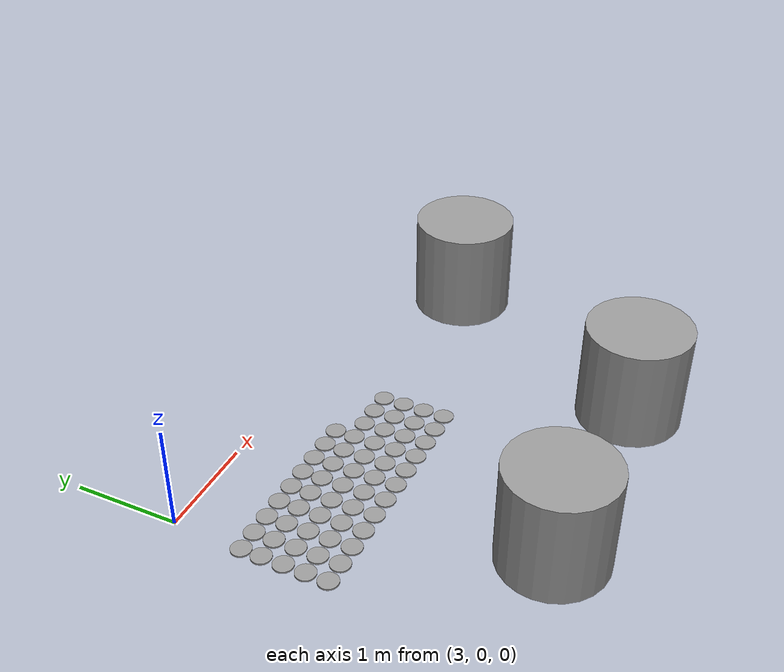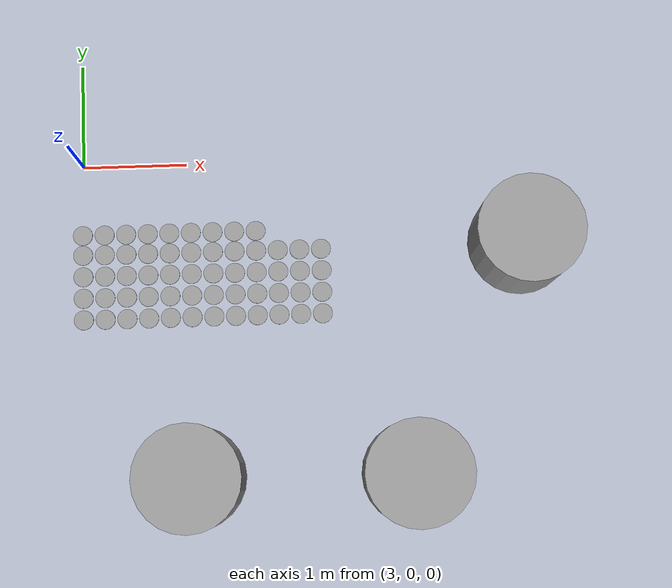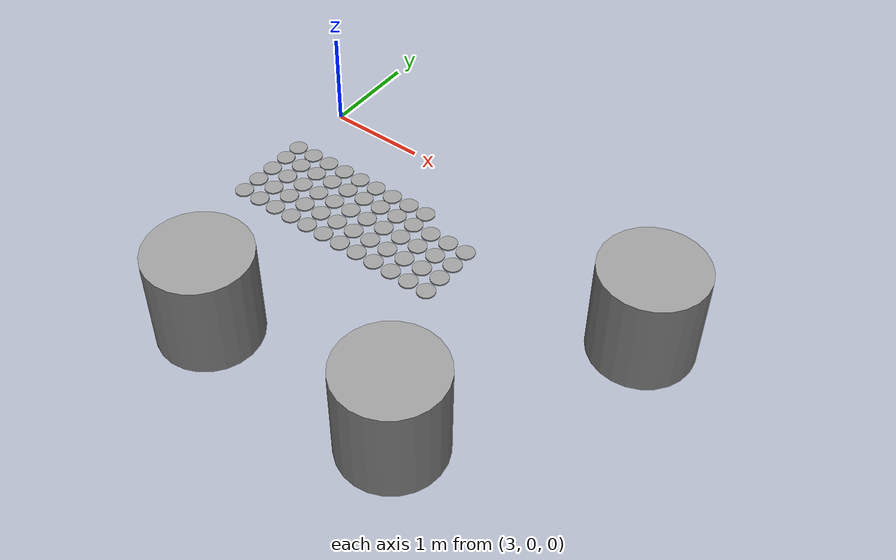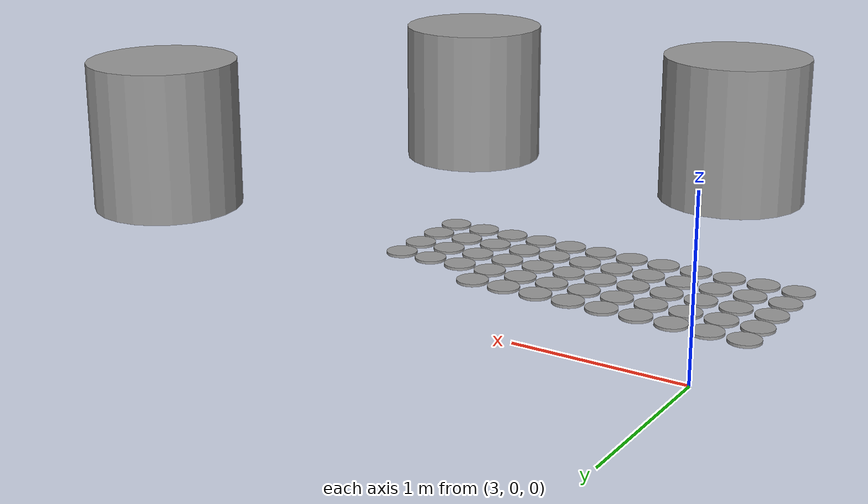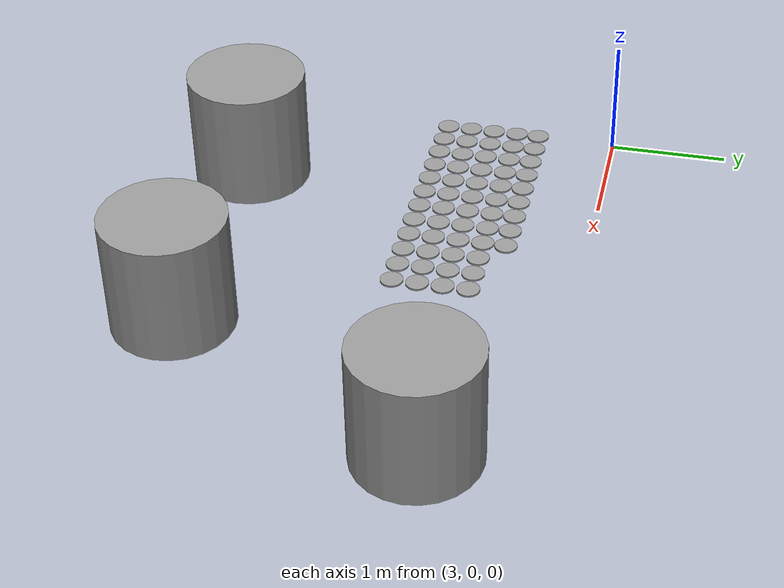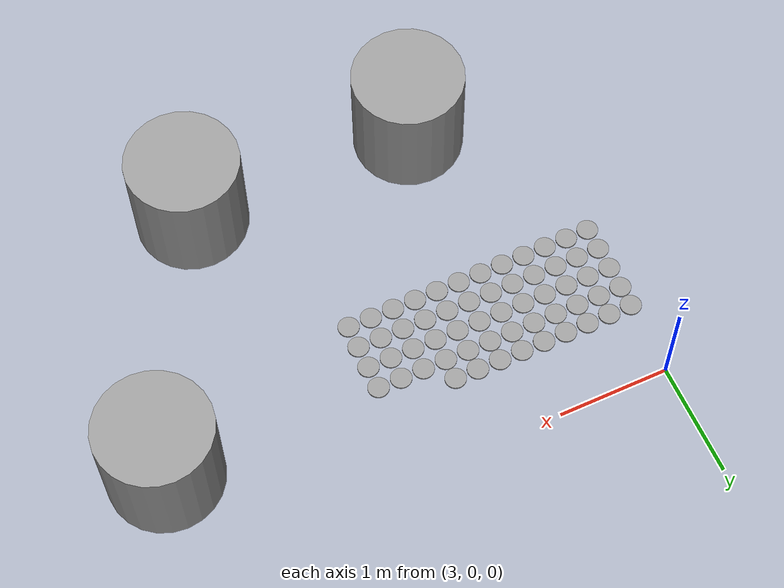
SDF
<sdf version="1.6">
 <world name="default">
  <model name="unit_cylinder_clone_690">
   <pose>2.98 -1.5 0.008117 0 -0 0</pose>
   <link name="link">
    <inertial>
     <mass>1</mass>
     <inertia><ixx>0.145833</ixx><ixy>0</ixy><ixz>0</ixz><iyy>0.145833</iyy><iyz>0</iyz><izz>0.125</izz></inertia>
    </inertial>
    <collision name="collision">
     <geometry><cylinder><radius>0.0950718</radius><length>0.0162339</length></cylinder></geometry>
     <max_contacts>5</max_contacts>
    </collision>
    <visual name="visual">
     <geometry><cylinder><radius>0.0950718</radius><length>0.0162339</length></cylinder></geometry>
     <material>
      <script><name>Gazebo/Grey</name><uri>file://media/materials/scripts/gazebo.material</uri></script>
     </material>
    </visual>
   </link>
  </model>
  <model name="unit_cylinder_clone_691">
   <pose>2.98 -1.29 0.008117 0 -0 0</pose>
   <link name="link">
    <inertial>
     <mass>1</mass>
     <inertia><ixx>0.145833</ixx><ixy>0</ixy><ixz>0</ixz><iyy>0.145833</iyy><iyz>0</iyz><izz>0.125</izz></inertia>
    </inertial>
    <collision name="collision">
     <geometry><cylinder><radius>0.0950718</radius><length>0.0162339</length></cylinder></geometry>
     <max_contacts>5</max_contacts>
    </collision>
    <visual name="visual">
     <geometry><cylinder><radius>0.0950718</radius><length>0.0162339</length></cylinder></geometry>
     <material>
      <script><name>Gazebo/Grey</name><uri>file://media/materials/scripts/gazebo.material</uri></script>
     </material>
    </visual>
   </link>
  </model>
  <model name="unit_cylinder_clone_692">
   <pose>2.98 -1.08 0.008117 0 -0 0</pose>
   <link name="link">
    <inertial>
     <mass>1</mass>
     <inertia><ixx>0.145833</ixx><ixy>0</ixy><ixz>0</ixz><iyy>0.145833</iyy><iyz>0</iyz><izz>0.125</izz></inertia>
    </inertial>
    <collision name="collision">
     <geometry><cylinder><radius>0.0950718</radius><length>0.0162339</length></cylinder></geometry>
     <max_contacts>5</max_contacts>
    </collision>
    <visual name="visual">
     <geometry><cylinder><radius>0.0950718</radius><length>0.0162339</length></cylinder></geometry>
     <material>
      <script><name>Gazebo/Grey</name><uri>file://media/materials/scripts/gazebo.material</uri></script>
     </material>
    </visual>
   </link>
  </model>
  <model name="unit_cylinder_clone_693">
   <pose>2.98 -0.87 0.008117 0 -0 0</pose>
   <link name="link">
    <inertial>
     <mass>1</mass>
     <inertia><ixx>0.145833</ixx><ixy>0</ixy><ixz>0</ixz><iyy>0.145833</iyy><iyz>0</iyz><izz>0.125</izz></inertia>
    </inertial>
    <collision name="collision">
     <geometry><cylinder><radius>0.0950718</radius><length>0.0162339</length></cylinder></geometry>
     <max_contacts>5</max_contacts>
    </collision>
    <visual name="visual">
     <geometry><cylinder><radius>0.0950718</radius><length>0.0162339</length></cylinder></geometry>
     <material>
      <script><name>Gazebo/Grey</name><uri>file://media/materials/scripts/gazebo.material</uri></script>
     </material>
    </visual>
   </link>
  </model>
  <model name="unit_cylinder_clone_694">
   <pose>2.98 -0.675077 0.008117 -0 -0 -0</pose>
   <link name="link">
    <inertial>
     <mass>1</mass>
     <inertia><ixx>0.145833</ixx><ixy>0</ixy><ixz>0</ixz><iyy>0.145833</iyy><iyz>0</iyz><izz>0.125</izz></inertia>
    </inertial>
    <collision name="collision">
     <geometry><cylinder><radius>0.0950718</radius><length>0.0162339</length></cylinder></geometry>
     <max_contacts>5</max_contacts>
    </collision>
    <visual name="visual">
     <geometry><cylinder><radius>0.0950718</radius><length>0.0162339</length></cylinder></geometry>
     <material>
      <script><name>Gazebo/Grey</name><uri>file://media/materials/scripts/gazebo.material</uri></script>
     </material>
    </visual>
   </link>
  </model>
  <model name="unit_cylinder_clone_695">
   <pose>3.19 -1.5 0.008117 0 -0 0</pose>
   <link name="link">
    <inertial>
     <mass>1</mass>
     <inertia><ixx>0.145833</ixx><ixy>0</ixy><ixz>0</ixz><iyy>0.145833</iyy><iyz>0</iyz><izz>0.125</izz></inertia>
    </inertial>
    <collision name="collision">
     <geometry><cylinder><radius>0.0950718</radius><length>0.0162339</length></cylinder></geometry>
     <max_contacts>5</max_contacts>
    </collision>
    <visual name="visual">
     <geometry><cylinder><radius>0.0950718</radius><length>0.0162339</length></cylinder></geometry>
     <material>
      <script><name>Gazebo/Grey</name><uri>file://media/materials/scripts/gazebo.material</uri></script>
     </material>
    </visual>
   </link>
  </model>
  <model name="unit_cylinder_clone_696">
   <pose>3.19 -1.29 0.008117 0 -0 0</pose>
   <link name="link">
    <inertial>
     <mass>1</mass>
     <inertia><ixx>0.145833</ixx><ixy>0</ixy><ixz>0</ixz><iyy>0.145833</iyy><iyz>0</iyz><izz>0.125</izz></inertia>
    </inertial>
    <collision name="collision">
     <geometry><cylinder><radius>0.0950718</radius><length>0.0162339</length></cylinder></geometry>
     <max_contacts>5</max_contacts>
    </collision>
    <visual name="visual">
     <geometry><cylinder><radius>0.0950718</radius><length>0.0162339</length></cylinder></geometry>
     <material>
      <script><name>Gazebo/Grey</name><uri>file://media/materials/scripts/gazebo.material</uri></script>
     </material>
    </visual>
   </link>
  </model>
  <model name="unit_cylinder_clone_697">
   <pose>3.19 -1.08 0.008117 0 -0 0</pose>
   <link name="link">
    <inertial>
     <mass>1</mass>
     <inertia><ixx>0.145833</ixx><ixy>0</ixy><ixz>0</ixz><iyy>0.145833</iyy><iyz>0</iyz><izz>0.125</izz></inertia>
    </inertial>
    <collision name="collision">
     <geometry><cylinder><radius>0.0950718</radius><length>0.0162339</length></cylinder></geometry>
     <max_contacts>5</max_contacts>
    </collision>
    <visual name="visual">
     <geometry><cylinder><radius>0.0950718</radius><length>0.0162339</length></cylinder></geometry>
     <material>
      <script><name>Gazebo/Grey</name><uri>file://media/materials/scripts/gazebo.material</uri></script>
     </material>
    </visual>
   </link>
  </model>
  <model name="unit_cylinder_clone_698">
   <pose>3.19 -0.87 0.008117 0 -0 0</pose>
   <link name="link">
    <inertial>
     <mass>1</mass>
     <inertia><ixx>0.145833</ixx><ixy>0</ixy><ixz>0</ixz><iyy>0.145833</iyy><iyz>0</iyz><izz>0.125</izz></inertia>
    </inertial>
    <collision name="collision">
     <geometry><cylinder><radius>0.0950718</radius><length>0.0162339</length></cylinder></geometry>
     <max_contacts>5</max_contacts>
    </collision>
    <visual name="visual">
     <geometry><cylinder><radius>0.0950718</radius><length>0.0162339</length></cylinder></geometry>
     <material>
      <script><name>Gazebo/Grey</name><uri>file://media/materials/scripts/gazebo.material</uri></script>
     </material>
    </visual>
   </link>
  </model>
  <model name="unit_cylinder_clone_699">
   <pose>3.19 -0.675077 0.008117 -0 -0 -0</pose>
   <link name="link">
    <inertial>
     <mass>1</mass>
     <inertia><ixx>0.145833</ixx><ixy>0</ixy><ixz>0</ixz><iyy>0.145833</iyy><iyz>0</iyz><izz>0.125</izz></inertia>
    </inertial>
    <collision name="collision">
     <geometry><cylinder><radius>0.0950718</radius><length>0.0162339</length></cylinder></geometry>
     <max_contacts>5</max_contacts>
    </collision>
    <visual name="visual">
     <geometry><cylinder><radius>0.0950718</radius><length>0.0162339</length></cylinder></geometry>
     <material>
      <script><name>Gazebo/Grey</name><uri>file://media/materials/scripts/gazebo.material</uri></script>
     </material>
    </visual>
   </link>
  </model>
  <model name="unit_cylinder_clone_700">
   <pose>3.4 -1.5 0.008117 0 -0 0</pose>
   <link name="link">
    <inertial>
     <mass>1</mass>
     <inertia><ixx>0.145833</ixx><ixy>0</ixy><ixz>0</ixz><iyy>0.145833</iyy><iyz>0</iyz><izz>0.125</izz></inertia>
    </inertial>
    <collision name="collision">
     <geometry><cylinder><radius>0.0950718</radius><length>0.0162339</length></cylinder></geometry>
     <max_contacts>5</max_contacts>
    </collision>
    <visual name="visual">
     <geometry><cylinder><radius>0.0950718</radius><length>0.0162339</length></cylinder></geometry>
     <material>
      <script><name>Gazebo/Grey</name><uri>file://media/materials/scripts/gazebo.material</uri></script>
     </material>
    </visual>
   </link>
  </model>
  <model name="unit_cylinder_clone_701">
   <pose>3.4 -1.29 0.008117 0 -0 0</pose>
   <link name="link">
    <inertial>
     <mass>1</mass>
     <inertia><ixx>0.145833</ixx><ixy>0</ixy><ixz>0</ixz><iyy>0.145833</iyy><iyz>0</iyz><izz>0.125</izz></inertia>
    </inertial>
    <collision name="collision">
     <geometry><cylinder><radius>0.0950718</radius><length>0.0162339</length></cylinder></geometry>
     <max_contacts>5</max_contacts>
    </collision>
    <visual name="visual">
     <geometry><cylinder><radius>0.0950718</radius><length>0.0162339</length></cylinder></geometry>
     <material>
      <script><name>Gazebo/Grey</name><uri>file://media/materials/scripts/gazebo.material</uri></script>
     </material>
    </visual>
   </link>
  </model>
  <model name="unit_cylinder_clone_702">
   <pose>3.4 -1.08 0.008117 0 -0 0</pose>
   <link name="link">
    <inertial>
     <mass>1</mass>
     <inertia><ixx>0.145833</ixx><ixy>0</ixy><ixz>0</ixz><iyy>0.145833</iyy><iyz>0</iyz><izz>0.125</izz></inertia>
    </inertial>
    <collision name="collision">
     <geometry><cylinder><radius>0.0950718</radius><length>0.0162339</length></cylinder></geometry>
     <max_contacts>5</max_contacts>
    </collision>
    <visual name="visual">
     <geometry><cylinder><radius>0.0950718</radius><length>0.0162339</length></cylinder></geometry>
     <material>
      <script><name>Gazebo/Grey</name><uri>file://media/materials/scripts/gazebo.material</uri></script>
     </material>
    </visual>
   </link>
  </model>
  <model name="unit_cylinder_clone_703">
   <pose>3.4 -0.87 0.008117 0 -0 0</pose>
   <link name="link">
    <inertial>
     <mass>1</mass>
     <inertia><ixx>0.145833</ixx><ixy>0</ixy><ixz>0</ixz><iyy>0.145833</iyy><iyz>0</iyz><izz>0.125</izz></inertia>
    </inertial>
    <collision name="collision">
     <geometry><cylinder><radius>0.0950718</radius><length>0.0162339</length></cylinder></geometry>
     <max_contacts>5</max_contacts>
    </collision>
    <visual name="visual">
     <geometry><cylinder><radius>0.0950718</radius><length>0.0162339</length></cylinder></geometry>
     <material>
      <script><name>Gazebo/Grey</name><uri>file://media/materials/scripts/gazebo.material</uri></script>
     </material>
    </visual>
   </link>
  </model>
  <model name="unit_cylinder_clone_704">
   <pose>3.4 -0.675077 0.008117 -0 -0 -0</pose>
   <link name="link">
    <inertial>
     <mass>1</mass>
     <inertia><ixx>0.145833</ixx><ixy>0</ixy><ixz>0</ixz><iyy>0.145833</iyy><iyz>0</iyz><izz>0.125</izz></inertia>
    </inertial>
    <collision name="collision">
     <geometry><cylinder><radius>0.0950718</radius><length>0.0162339</length></cylinder></geometry>
     <max_contacts>5</max_contacts>
    </collision>
    <visual name="visual">
     <geometry><cylinder><radius>0.0950718</radius><length>0.0162339</length></cylinder></geometry>
     <material>
      <script><name>Gazebo/Grey</name><uri>file://media/materials/scripts/gazebo.material</uri></script>
     </material>
    </visual>
   </link>
  </model>
  <model name="unit_cylinder_clone_705">
   <pose>3.61 -1.5 0.008117 0 -0 0</pose>
   <link name="link">
    <inertial>
     <mass>1</mass>
     <inertia><ixx>0.145833</ixx><ixy>0</ixy><ixz>0</ixz><iyy>0.145833</iyy><iyz>0</iyz><izz>0.125</izz></inertia>
    </inertial>
    <collision name="collision">
     <geometry><cylinder><radius>0.0950718</radius><length>0.0162339</length></cylinder></geometry>
     <max_contacts>5</max_contacts>
    </collision>
    <visual name="visual">
     <geometry><cylinder><radius>0.0950718</radius><length>0.0162339</length></cylinder></geometry>
     <material>
      <script><name>Gazebo/Grey</name><uri>file://media/materials/scripts/gazebo.material</uri></script>
     </material>
    </visual>
   </link>
  </model>
  <model name="unit_cylinder_clone_706">
   <pose>3.61 -1.29 0.008117 0 -0 0</pose>
   <link name="link">
    <inertial>
     <mass>1</mass>
     <inertia><ixx>0.145833</ixx><ixy>0</ixy><ixz>0</ixz><iyy>0.145833</iyy><iyz>0</iyz><izz>0.125</izz></inertia>
    </inertial>
    <collision name="collision">
     <geometry><cylinder><radius>0.0950718</radius><length>0.0162339</length></cylinder></geometry>
     <max_contacts>5</max_contacts>
    </collision>
    <visual name="visual">
     <geometry><cylinder><radius>0.0950718</radius><length>0.0162339</length></cylinder></geometry>
     <material>
      <script><name>Gazebo/Grey</name><uri>file://media/materials/scripts/gazebo.material</uri></script>
     </material>
    </visual>
   </link>
  </model>
  <model name="unit_cylinder_clone_707">
   <pose>3.61 -1.08 0.008117 0 -0 0</pose>
   <link name="link">
    <inertial>
     <mass>1</mass>
     <inertia><ixx>0.145833</ixx><ixy>0</ixy><ixz>0</ixz><iyy>0.145833</iyy><iyz>0</iyz><izz>0.125</izz></inertia>
    </inertial>
    <collision name="collision">
     <geometry><cylinder><radius>0.0950718</radius><length>0.0162339</length></cylinder></geometry>
     <max_contacts>5</max_contacts>
    </collision>
    <visual name="visual">
     <geometry><cylinder><radius>0.0950718</radius><length>0.0162339</length></cylinder></geometry>
     <material>
      <script><name>Gazebo/Grey</name><uri>file://media/materials/scripts/gazebo.material</uri></script>
     </material>
    </visual>
   </link>
  </model>
  <model name="unit_cylinder_clone_708">
   <pose>3.61 -0.87 0.008117 0 -0 0</pose>
   <link name="link">
    <inertial>
     <mass>1</mass>
     <inertia><ixx>0.145833</ixx><ixy>0</ixy><ixz>0</ixz><iyy>0.145833</iyy><iyz>0</iyz><izz>0.125</izz></inertia>
    </inertial>
    <collision name="collision">
     <geometry><cylinder><radius>0.0950718</radius><length>0.0162339</length></cylinder></geometry>
     <max_contacts>5</max_contacts>
    </collision>
    <visual name="visual">
     <geometry><cylinder><radius>0.0950718</radius><length>0.0162339</length></cylinder></geometry>
     <material>
      <script><name>Gazebo/Grey</name><uri>file://media/materials/scripts/gazebo.material</uri></script>
     </material>
    </visual>
   </link>
  </model>
  <model name="unit_cylinder_clone_709">
   <pose>3.61 -0.675077 0.008117 -0 -0 -0</pose>
   <link name="link">
    <inertial>
     <mass>1</mass>
     <inertia><ixx>0.145833</ixx><ixy>0</ixy><ixz>0</ixz><iyy>0.145833</iyy><iyz>0</iyz><izz>0.125</izz></inertia>
    </inertial>
    <collision name="collision">
     <geometry><cylinder><radius>0.0950718</radius><length>0.0162339</length></cylinder></geometry>
     <max_contacts>5</max_contacts>
    </collision>
    <visual name="visual">
     <geometry><cylinder><radius>0.0950718</radius><length>0.0162339</length></cylinder></geometry>
     <material>
      <script><name>Gazebo/Grey</name><uri>file://media/materials/scripts/gazebo.material</uri></script>
     </material>
    </visual>
   </link>
  </model>
  <model name="unit_cylinder_clone_710">
   <pose>3.82 -1.5 0.008117 0 -0 0</pose>
   <link name="link">
    <inertial>
     <mass>1</mass>
     <inertia><ixx>0.145833</ixx><ixy>0</ixy><ixz>0</ixz><iyy>0.145833</iyy><iyz>0</iyz><izz>0.125</izz></inertia>
    </inertial>
    <collision name="collision">
     <geometry><cylinder><radius>0.0950718</radius><length>0.0162339</length></cylinder></geometry>
     <max_contacts>5</max_contacts>
    </collision>
    <visual name="visual">
     <geometry><cylinder><radius>0.0950718</radius><length>0.0162339</length></cylinder></geometry>
     <material>
      <script><name>Gazebo/Grey</name><uri>file://media/materials/scripts/gazebo.material</uri></script>
     </material>
    </visual>
   </link>
  </model>
  <model name="unit_cylinder_clone_711">
   <pose>3.82 -1.29 0.008117 0 -0 0</pose>
   <link name="link">
    <inertial>
     <mass>1</mass>
     <inertia><ixx>0.145833</ixx><ixy>0</ixy><ixz>0</ixz><iyy>0.145833</iyy><iyz>0</iyz><izz>0.125</izz></inertia>
    </inertial>
    <collision name="collision">
     <geometry><cylinder><radius>0.0950718</radius><length>0.0162339</length></cylinder></geometry>
     <max_contacts>5</max_contacts>
    </collision>
    <visual name="visual">
     <geometry><cylinder><radius>0.0950718</radius><length>0.0162339</length></cylinder></geometry>
     <material>
      <script><name>Gazebo/Grey</name><uri>file://media/materials/scripts/gazebo.material</uri></script>
     </material>
    </visual>
   </link>
  </model>
  <model name="unit_cylinder_clone_712">
   <pose>3.82 -1.08 0.008117 0 -0 0</pose>
   <link name="link">
    <inertial>
     <mass>1</mass>
     <inertia><ixx>0.145833</ixx><ixy>0</ixy><ixz>0</ixz><iyy>0.145833</iyy><iyz>0</iyz><izz>0.125</izz></inertia>
    </inertial>
    <collision name="collision">
     <geometry><cylinder><radius>0.0950718</radius><length>0.0162339</length></cylinder></geometry>
     <max_contacts>5</max_contacts>
    </collision>
    <visual name="visual">
     <geometry><cylinder><radius>0.0950718</radius><length>0.0162339</length></cylinder></geometry>
     <material>
      <script><name>Gazebo/Grey</name><uri>file://media/materials/scripts/gazebo.material</uri></script>
     </material>
    </visual>
   </link>
  </model>
  <model name="unit_cylinder_clone_713">
   <pose>3.82 -0.87 0.008117 0 -0 0</pose>
   <link name="link">
    <inertial>
     <mass>1</mass>
     <inertia><ixx>0.145833</ixx><ixy>0</ixy><ixz>0</ixz><iyy>0.145833</iyy><iyz>0</iyz><izz>0.125</izz></inertia>
    </inertial>
    <collision name="collision">
     <geometry><cylinder><radius>0.0950718</radius><length>0.0162339</length></cylinder></geometry>
     <max_contacts>5</max_contacts>
    </collision>
    <visual name="visual">
     <geometry><cylinder><radius>0.0950718</radius><length>0.0162339</length></cylinder></geometry>
     <material>
      <script><name>Gazebo/Grey</name><uri>file://media/materials/scripts/gazebo.material</uri></script>
     </material>
    </visual>
   </link>
  </model>
  <model name="unit_cylinder_clone_714">
   <pose>3.82 -0.675077 0.008117 -0 -0 -0</pose>
   <link name="link">
    <inertial>
     <mass>1</mass>
     <inertia><ixx>0.145833</ixx><ixy>0</ixy><ixz>0</ixz><iyy>0.145833</iyy><iyz>0</iyz><izz>0.125</izz></inertia>
    </inertial>
    <collision name="collision">
     <geometry><cylinder><radius>0.0950718</radius><length>0.0162339</length></cylinder></geometry>
     <max_contacts>5</max_contacts>
    </collision>
    <visual name="visual">
     <geometry><cylinder><radius>0.0950718</radius><length>0.0162339</length></cylinder></geometry>
     <material>
      <script><name>Gazebo/Grey</name><uri>file://media/materials/scripts/gazebo.material</uri></script>
     </material>
    </visual>
   </link>
  </model>
  <model name="unit_cylinder_clone_715">
   <pose>4.03 -1.5 0.008117 0 -0 0</pose>
   <link name="link">
    <inertial>
     <mass>1</mass>
     <inertia><ixx>0.145833</ixx><ixy>0</ixy><ixz>0</ixz><iyy>0.145833</iyy><iyz>0</iyz><izz>0.125</izz></inertia>
    </inertial>
    <collision name="collision">
     <geometry><cylinder><radius>0.0950718</radius><length>0.0162339</length></cylinder></geometry>
     <max_contacts>5</max_contacts>
    </collision>
    <visual name="visual">
     <geometry><cylinder><radius>0.0950718</radius><length>0.0162339</length></cylinder></geometry>
     <material>
      <script><name>Gazebo/Grey</name><uri>file://media/materials/scripts/gazebo.material</uri></script>
     </material>
    </visual>
   </link>
  </model>
  <model name="unit_cylinder_clone_716">
   <pose>4.03 -1.29 0.008117 0 -0 0</pose>
   <link name="link">
    <inertial>
     <mass>1</mass>
     <inertia><ixx>0.145833</ixx><ixy>0</ixy><ixz>0</ixz><iyy>0.145833</iyy><iyz>0</iyz><izz>0.125</izz></inertia>
    </inertial>
    <collision name="collision">
     <geometry><cylinder><radius>0.0950718</radius><length>0.0162339</length></cylinder></geometry>
     <max_contacts>5</max_contacts>
    </collision>
    <visual name="visual">
     <geometry><cylinder><radius>0.0950718</radius><length>0.0162339</length></cylinder></geometry>
     <material>
      <script><name>Gazebo/Grey</name><uri>file://media/materials/scripts/gazebo.material</uri></script>
     </material>
    </visual>
   </link>
  </model>
  <model name="unit_cylinder_clone_717">
   <pose>4.03 -1.08 0.008117 0 -0 0</pose>
   <link name="link">
    <inertial>
     <mass>1</mass>
     <inertia><ixx>0.145833</ixx><ixy>0</ixy><ixz>0</ixz><iyy>0.145833</iyy><iyz>0</iyz><izz>0.125</izz></inertia>
    </inertial>
    <collision name="collision">
     <geometry><cylinder><radius>0.0950718</radius><length>0.0162339</length></cylinder></geometry>
     <max_contacts>5</max_contacts>
    </collision>
    <visual name="visual">
     <geometry><cylinder><radius>0.0950718</radius><length>0.0162339</length></cylinder></geometry>
     <material>
      <script><name>Gazebo/Grey</name><uri>file://media/materials/scripts/gazebo.material</uri></script>
     </material>
    </visual>
   </link>
  </model>
  <model name="unit_cylinder_clone_718">
   <pose>4.03 -0.87 0.008117 0 -0 0</pose>
   <link name="link">
    <inertial>
     <mass>1</mass>
     <inertia><ixx>0.145833</ixx><ixy>0</ixy><ixz>0</ixz><iyy>0.145833</iyy><iyz>0</iyz><izz>0.125</izz></inertia>
    </inertial>
    <collision name="collision">
     <geometry><cylinder><radius>0.0950718</radius><length>0.0162339</length></cylinder></geometry>
     <max_contacts>5</max_contacts>
    </collision>
    <visual name="visual">
     <geometry><cylinder><radius>0.0950718</radius><length>0.0162339</length></cylinder></geometry>
     <material>
      <script><name>Gazebo/Grey</name><uri>file://media/materials/scripts/gazebo.material</uri></script>
     </material>
    </visual>
   </link>
  </model>
  <model name="unit_cylinder_clone_719">
   <pose>4.03 -0.675077 0.008117 -0 -0 -0</pose>
   <link name="link">
    <inertial>
     <mass>1</mass>
     <inertia><ixx>0.145833</ixx><ixy>0</ixy><ixz>0</ixz><iyy>0.145833</iyy><iyz>0</iyz><izz>0.125</izz></inertia>
    </inertial>
    <collision name="collision">
     <geometry><cylinder><radius>0.0950718</radius><length>0.0162339</length></cylinder></geometry>
     <max_contacts>5</max_contacts>
    </collision>
    <visual name="visual">
     <geometry><cylinder><radius>0.0950718</radius><length>0.0162339</length></cylinder></geometry>
     <material>
      <script><name>Gazebo/Grey</name><uri>file://media/materials/scripts/gazebo.material</uri></script>
     </material>
    </visual>
   </link>
  </model>
  <model name="unit_cylinder_clone_720">
   <pose>4.24 -1.5 0.008117 0 -0 0</pose>
   <link name="link">
    <inertial>
     <mass>1</mass>
     <inertia><ixx>0.145833</ixx><ixy>0</ixy><ixz>0</ixz><iyy>0.145833</iyy><iyz>0</iyz><izz>0.125</izz></inertia>
    </inertial>
    <collision name="collision">
     <geometry><cylinder><radius>0.0950718</radius><length>0.0162339</length></cylinder></geometry>
     <max_contacts>5</max_contacts>
    </collision>
    <visual name="visual">
     <geometry><cylinder><radius>0.0950718</radius><length>0.0162339</length></cylinder></geometry>
     <material>
      <script><name>Gazebo/Grey</name><uri>file://media/materials/scripts/gazebo.material</uri></script>
     </material>
    </visual>
   </link>
  </model>
  <model name="unit_cylinder_clone_721">
   <pose>4.24 -1.29 0.008117 0 -0 0</pose>
   <link name="link">
    <inertial>
     <mass>1</mass>
     <inertia><ixx>0.145833</ixx><ixy>0</ixy><ixz>0</ixz><iyy>0.145833</iyy><iyz>0</iyz><izz>0.125</izz></inertia>
    </inertial>
    <collision name="collision">
     <geometry><cylinder><radius>0.0950718</radius><length>0.0162339</length></cylinder></geometry>
     <max_contacts>5</max_contacts>
    </collision>
    <visual name="visual">
     <geometry><cylinder><radius>0.0950718</radius><length>0.0162339</length></cylinder></geometry>
     <material>
      <script><name>Gazebo/Grey</name><uri>file://media/materials/scripts/gazebo.material</uri></script>
     </material>
    </visual>
   </link>
  </model>
  <model name="unit_cylinder_clone_722">
   <pose>4.24 -1.08 0.008117 0 -0 0</pose>
   <link name="link">
    <inertial>
     <mass>1</mass>
     <inertia><ixx>0.145833</ixx><ixy>0</ixy><ixz>0</ixz><iyy>0.145833</iyy><iyz>0</iyz><izz>0.125</izz></inertia>
    </inertial>
    <collision name="collision">
     <geometry><cylinder><radius>0.0950718</radius><length>0.0162339</length></cylinder></geometry>
     <max_contacts>5</max_contacts>
    </collision>
    <visual name="visual">
     <geometry><cylinder><radius>0.0950718</radius><length>0.0162339</length></cylinder></geometry>
     <material>
      <script><name>Gazebo/Grey</name><uri>file://media/materials/scripts/gazebo.material</uri></script>
     </material>
    </visual>
   </link>
  </model>
  <model name="unit_cylinder_clone_723">
   <pose>4.24 -0.87 0.008117 0 -0 0</pose>
   <link name="link">
    <inertial>
     <mass>1</mass>
     <inertia><ixx>0.145833</ixx><ixy>0</ixy><ixz>0</ixz><iyy>0.145833</iyy><iyz>0</iyz><izz>0.125</izz></inertia>
    </inertial>
    <collision name="collision">
     <geometry><cylinder><radius>0.0950718</radius><length>0.0162339</length></cylinder></geometry>
     <max_contacts>5</max_contacts>
    </collision>
    <visual name="visual">
     <geometry><cylinder><radius>0.0950718</radius><length>0.0162339</length></cylinder></geometry>
     <material>
      <script><name>Gazebo/Grey</name><uri>file://media/materials/scripts/gazebo.material</uri></script>
     </material>
    </visual>
   </link>
  </model>
  <model name="unit_cylinder_clone_724">
   <pose>4.24 -0.675077 0.008117 -0 -0 -0</pose>
   <link name="link">
    <inertial>
     <mass>1</mass>
     <inertia><ixx>0.145833</ixx><ixy>0</ixy><ixz>0</ixz><iyy>0.145833</iyy><iyz>0</iyz><izz>0.125</izz></inertia>
    </inertial>
    <collision name="collision">
     <geometry><cylinder><radius>0.0950718</radius><length>0.0162339</length></cylinder></geometry>
     <max_contacts>5</max_contacts>
    </collision>
    <visual name="visual">
     <geometry><cylinder><radius>0.0950718</radius><length>0.0162339</length></cylinder></geometry>
     <material>
      <script><name>Gazebo/Grey</name><uri>file://media/materials/scripts/gazebo.material</uri></script>
     </material>
    </visual>
   </link>
  </model>
  <model name="unit_cylinder_clone_725">
   <pose>4.45 -1.5 0.008117 0 -0 0</pose>
   <link name="link">
    <inertial>
     <mass>1</mass>
     <inertia><ixx>0.145833</ixx><ixy>0</ixy><ixz>0</ixz><iyy>0.145833</iyy><iyz>0</iyz><izz>0.125</izz></inertia>
    </inertial>
    <collision name="collision">
     <geometry><cylinder><radius>0.0950718</radius><length>0.0162339</length></cylinder></geometry>
     <max_contacts>5</max_contacts>
    </collision>
    <visual name="visual">
     <geometry><cylinder><radius>0.0950718</radius><length>0.0162339</length></cylinder></geometry>
     <material>
      <script><name>Gazebo/Grey</name><uri>file://media/materials/scripts/gazebo.material</uri></script>
     </material>
    </visual>
   </link>
  </model>
  <model name="unit_cylinder_clone_726">
   <pose>4.45 -1.29 0.008117 0 -0 0</pose>
   <link name="link">
    <inertial>
     <mass>1</mass>
     <inertia><ixx>0.145833</ixx><ixy>0</ixy><ixz>0</ixz><iyy>0.145833</iyy><iyz>0</iyz><izz>0.125</izz></inertia>
    </inertial>
    <collision name="collision">
     <geometry><cylinder><radius>0.0950718</radius><length>0.0162339</length></cylinder></geometry>
     <max_contacts>5</max_contacts>
    </collision>
    <visual name="visual">
     <geometry><cylinder><radius>0.0950718</radius><length>0.0162339</length></cylinder></geometry>
     <material>
      <script><name>Gazebo/Grey</name><uri>file://media/materials/scripts/gazebo.material</uri></script>
     </material>
    </visual>
   </link>
  </model>
  <model name="unit_cylinder_clone_727">
   <pose>4.45 -1.08 0.008117 0 -0 0</pose>
   <link name="link">
    <inertial>
     <mass>1</mass>
     <inertia><ixx>0.145833</ixx><ixy>0</ixy><ixz>0</ixz><iyy>0.145833</iyy><iyz>0</iyz><izz>0.125</izz></inertia>
    </inertial>
    <collision name="collision">
     <geometry><cylinder><radius>0.0950718</radius><length>0.0162339</length></cylinder></geometry>
     <max_contacts>5</max_contacts>
    </collision>
    <visual name="visual">
     <geometry><cylinder><radius>0.0950718</radius><length>0.0162339</length></cylinder></geometry>
     <material>
      <script><name>Gazebo/Grey</name><uri>file://media/materials/scripts/gazebo.material</uri></script>
     </material>
    </visual>
   </link>
  </model>
  <model name="unit_cylinder_clone_728">
   <pose>4.45 -0.87 0.008117 0 -0 0</pose>
   <link name="link">
    <inertial>
     <mass>1</mass>
     <inertia><ixx>0.145833</ixx><ixy>0</ixy><ixz>0</ixz><iyy>0.145833</iyy><iyz>0</iyz><izz>0.125</izz></inertia>
    </inertial>
    <collision name="collision">
     <geometry><cylinder><radius>0.0950718</radius><length>0.0162339</length></cylinder></geometry>
     <max_contacts>5</max_contacts>
    </collision>
    <visual name="visual">
     <geometry><cylinder><radius>0.0950718</radius><length>0.0162339</length></cylinder></geometry>
     <material>
      <script><name>Gazebo/Grey</name><uri>file://media/materials/scripts/gazebo.material</uri></script>
     </material>
    </visual>
   </link>
  </model>
  <model name="unit_cylinder_clone_729">
   <pose>4.45 -0.675077 0.008117 -0 -0 -0</pose>
   <link name="link">
    <inertial>
     <mass>1</mass>
     <inertia><ixx>0.145833</ixx><ixy>0</ixy><ixz>0</ixz><iyy>0.145833</iyy><iyz>0</iyz><izz>0.125</izz></inertia>
    </inertial>
    <collision name="collision">
     <geometry><cylinder><radius>0.0950718</radius><length>0.0162339</length></cylinder></geometry>
     <max_contacts>5</max_contacts>
    </collision>
    <visual name="visual">
     <geometry><cylinder><radius>0.0950718</radius><length>0.0162339</length></cylinder></geometry>
     <material>
      <script><name>Gazebo/Grey</name><uri>file://media/materials/scripts/gazebo.material</uri></script>
     </material>
    </visual>
   </link>
  </model>
  <model name="unit_cylinder_clone_730">
   <pose>4.66 -1.5 0.008117 0 -0 0</pose>
   <link name="link">
    <inertial>
     <mass>1</mass>
     <inertia><ixx>0.145833</ixx><ixy>0</ixy><ixz>0</ixz><iyy>0.145833</iyy><iyz>0</iyz><izz>0.125</izz></inertia>
    </inertial>
    <collision name="collision">
     <geometry><cylinder><radius>0.0950718</radius><length>0.0162339</length></cylinder></geometry>
     <max_contacts>5</max_contacts>
    </collision>
    <visual name="visual">
     <geometry><cylinder><radius>0.0950718</radius><length>0.0162339</length></cylinder></geometry>
     <material>
      <script><name>Gazebo/Grey</name><uri>file://media/materials/scripts/gazebo.material</uri></script>
     </material>
    </visual>
   </link>
  </model>
  <model name="unit_cylinder_clone_731">
   <pose>4.66 -1.29 0.008117 0 -0 0</pose>
   <link name="link">
    <inertial>
     <mass>1</mass>
     <inertia><ixx>0.145833</ixx><ixy>0</ixy><ixz>0</ixz><iyy>0.145833</iyy><iyz>0</iyz><izz>0.125</izz></inertia>
    </inertial>
    <collision name="collision">
     <geometry><cylinder><radius>0.0950718</radius><length>0.0162339</length></cylinder></geometry>
     <max_contacts>5</max_contacts>
    </collision>
    <visual name="visual">
     <geometry><cylinder><radius>0.0950718</radius><length>0.0162339</length></cylinder></geometry>
     <material>
      <script><name>Gazebo/Grey</name><uri>file://media/materials/scripts/gazebo.material</uri></script>
     </material>
    </visual>
   </link>
  </model>
  <model name="unit_cylinder_clone_732">
   <pose>4.66 -1.08 0.008117 0 -0 0</pose>
   <link name="link">
    <inertial>
     <mass>1</mass>
     <inertia><ixx>0.145833</ixx><ixy>0</ixy><ixz>0</ixz><iyy>0.145833</iyy><iyz>0</iyz><izz>0.125</izz></inertia>
    </inertial>
    <collision name="collision">
     <geometry><cylinder><radius>0.0950718</radius><length>0.0162339</length></cylinder></geometry>
     <max_contacts>5</max_contacts>
    </collision>
    <visual name="visual">
     <geometry><cylinder><radius>0.0950718</radius><length>0.0162339</length></cylinder></geometry>
     <material>
      <script><name>Gazebo/Grey</name><uri>file://media/materials/scripts/gazebo.material</uri></script>
     </material>
    </visual>
   </link>
  </model>
  <model name="unit_cylinder_clone_733">
   <pose>4.66 -0.87 0.008117 0 -0 0</pose>
   <link name="link">
    <inertial>
     <mass>1</mass>
     <inertia><ixx>0.145833</ixx><ixy>0</ixy><ixz>0</ixz><iyy>0.145833</iyy><iyz>0</iyz><izz>0.125</izz></inertia>
    </inertial>
    <collision name="collision">
     <geometry><cylinder><radius>0.0950718</radius><length>0.0162339</length></cylinder></geometry>
     <max_contacts>5</max_contacts>
    </collision>
    <visual name="visual">
     <geometry><cylinder><radius>0.0950718</radius><length>0.0162339</length></cylinder></geometry>
     <material>
      <script><name>Gazebo/Grey</name><uri>file://media/materials/scripts/gazebo.material</uri></script>
     </material>
    </visual>
   </link>
  </model>
  <model name="unit_cylinder_clone_734">
   <pose>4.66 -0.675077 0.008117 -0 -0 -0</pose>
   <link name="link">
    <inertial>
     <mass>1</mass>
     <inertia><ixx>0.145833</ixx><ixy>0</ixy><ixz>0</ixz><iyy>0.145833</iyy><iyz>0</iyz><izz>0.125</izz></inertia>
    </inertial>
    <collision name="collision">
     <geometry><cylinder><radius>0.0950718</radius><length>0.0162339</length></cylinder></geometry>
     <max_contacts>5</max_contacts>
    </collision>
    <visual name="visual">
     <geometry><cylinder><radius>0.0950718</radius><length>0.0162339</length></cylinder></geometry>
     <material>
      <script><name>Gazebo/Grey</name><uri>file://media/materials/scripts/gazebo.material</uri></script>
     </material>
    </visual>
   </link>
  </model>
  <model name="unit_cylinder_clone_735">
   <pose>4.87 -1.5 0.008117 0 -0 0</pose>
   <link name="link">
    <inertial>
     <mass>1</mass>
     <inertia><ixx>0.145833</ixx><ixy>0</ixy><ixz>0</ixz><iyy>0.145833</iyy><iyz>0</iyz><izz>0.125</izz></inertia>
    </inertial>
    <collision name="collision">
     <geometry><cylinder><radius>0.0950718</radius><length>0.0162339</length></cylinder></geometry>
     <max_contacts>5</max_contacts>
    </collision>
    <visual name="visual">
     <geometry><cylinder><radius>0.0950718</radius><length>0.0162339</length></cylinder></geometry>
     <material>
      <script><name>Gazebo/Grey</name><uri>file://media/materials/scripts/gazebo.material</uri></script>
     </material>
    </visual>
   </link>
  </model>
  <model name="unit_cylinder_clone_736">
   <pose>4.87 -1.29 0.008117 0 -0 0</pose>
   <link name="link">
    <inertial>
     <mass>1</mass>
     <inertia><ixx>0.145833</ixx><ixy>0</ixy><ixz>0</ixz><iyy>0.145833</iyy><iyz>0</iyz><izz>0.125</izz></inertia>
    </inertial>
    <collision name="collision">
     <geometry><cylinder><radius>0.0950718</radius><length>0.0162339</length></cylinder></geometry>
     <max_contacts>5</max_contacts>
    </collision>
    <visual name="visual">
     <geometry><cylinder><radius>0.0950718</radius><length>0.0162339</length></cylinder></geometry>
     <material>
      <script><name>Gazebo/Grey</name><uri>file://media/materials/scripts/gazebo.material</uri></script>
     </material>
    </visual>
   </link>
  </model>
  <model name="unit_cylinder_clone_737">
   <pose>4.87 -1.08 0.008117 0 -0 0</pose>
   <link name="link">
    <inertial>
     <mass>1</mass>
     <inertia><ixx>0.145833</ixx><ixy>0</ixy><ixz>0</ixz><iyy>0.145833</iyy><iyz>0</iyz><izz>0.125</izz></inertia>
    </inertial>
    <collision name="collision">
     <geometry><cylinder><radius>0.0950718</radius><length>0.0162339</length></cylinder></geometry>
     <max_contacts>5</max_contacts>
    </collision>
    <visual name="visual">
     <geometry><cylinder><radius>0.0950718</radius><length>0.0162339</length></cylinder></geometry>
     <material>
      <script><name>Gazebo/Grey</name><uri>file://media/materials/scripts/gazebo.material</uri></script>
     </material>
    </visual>
   </link>
  </model>
  <model name="unit_cylinder_clone_738">
   <pose>4.87 -0.87 0.008117 0 -0 0</pose>
   <link name="link">
    <inertial>
     <mass>1</mass>
     <inertia><ixx>0.145833</ixx><ixy>0</ixy><ixz>0</ixz><iyy>0.145833</iyy><iyz>0</iyz><izz>0.125</izz></inertia>
    </inertial>
    <collision name="collision">
     <geometry><cylinder><radius>0.0950718</radius><length>0.0162339</length></cylinder></geometry>
     <max_contacts>5</max_contacts>
    </collision>
    <visual name="visual">
     <geometry><cylinder><radius>0.0950718</radius><length>0.0162339</length></cylinder></geometry>
     <material>
      <script><name>Gazebo/Grey</name><uri>file://media/materials/scripts/gazebo.material</uri></script>
     </material>
    </visual>
   </link>
  </model>
  <model name="unit_cylinder_clone_740">
   <pose>5.08 -1.5 0.008117 0 -0 0</pose>
   <link name="link">
    <inertial>
     <mass>1</mass>
     <inertia><ixx>0.145833</ixx><ixy>0</ixy><ixz>0</ixz><iyy>0.145833</iyy><iyz>0</iyz><izz>0.125</izz></inertia>
    </inertial>
    <collision name="collision">
     <geometry><cylinder><radius>0.0950718</radius><length>0.0162339</length></cylinder></geometry>
     <max_contacts>5</max_contacts>
    </collision>
    <visual name="visual">
     <geometry><cylinder><radius>0.0950718</radius><length>0.0162339</length></cylinder></geometry>
     <material>
      <script><name>Gazebo/Grey</name><uri>file://media/materials/scripts/gazebo.material</uri></script>
     </material>
    </visual>
   </link>
  </model>
  <model name="unit_cylinder_clone_741">
   <pose>5.08 -1.29 0.008117 0 -0 0</pose>
   <link name="link">
    <inertial>
     <mass>1</mass>
     <inertia><ixx>0.145833</ixx><ixy>0</ixy><ixz>0</ixz><iyy>0.145833</iyy><iyz>0</iyz><izz>0.125</izz></inertia>
    </inertial>
    <collision name="collision">
     <geometry><cylinder><radius>0.0950718</radius><length>0.0162339</length></cylinder></geometry>
     <max_contacts>5</max_contacts>
    </collision>
    <visual name="visual">
     <geometry><cylinder><radius>0.0950718</radius><length>0.0162339</length></cylinder></geometry>
     <material>
      <script><name>Gazebo/Grey</name><uri>file://media/materials/scripts/gazebo.material</uri></script>
     </material>
    </visual>
   </link>
  </model>
  <model name="unit_cylinder_clone_742">
   <pose>5.08 -1.08 0.008117 0 -0 0</pose>
   <link name="link">
    <inertial>
     <mass>1</mass>
     <inertia><ixx>0.145833</ixx><ixy>0</ixy><ixz>0</ixz><iyy>0.145833</iyy><iyz>0</iyz><izz>0.125</izz></inertia>
    </inertial>
    <collision name="collision">
     <geometry><cylinder><radius>0.0950718</radius><length>0.0162339</length></cylinder></geometry>
     <max_contacts>5</max_contacts>
    </collision>
    <visual name="visual">
     <geometry><cylinder><radius>0.0950718</radius><length>0.0162339</length></cylinder></geometry>
     <material>
      <script><name>Gazebo/Grey</name><uri>file://media/materials/scripts/gazebo.material</uri></script>
     </material>
    </visual>
   </link>
  </model>
  <model name="unit_cylinder_clone_743">
   <pose>5.08 -0.87 0.008117 0 -0 0</pose>
   <link name="link">
    <inertial>
     <mass>1</mass>
     <inertia><ixx>0.145833</ixx><ixy>0</ixy><ixz>0</ixz><iyy>0.145833</iyy><iyz>0</iyz><izz>0.125</izz></inertia>
    </inertial>
    <collision name="collision">
     <geometry><cylinder><radius>0.0950718</radius><length>0.0162339</length></cylinder></geometry>
     <max_contacts>5</max_contacts>
    </collision>
    <visual name="visual">
     <geometry><cylinder><radius>0.0950718</radius><length>0.0162339</length></cylinder></geometry>
     <material>
      <script><name>Gazebo/Grey</name><uri>file://media/materials/scripts/gazebo.material</uri></script>
     </material>
    </visual>
   </link>
  </model>
  <model name="unit_cylinder_clone_745">
   <pose>5.29 -1.5 0.008117 0 -0 0</pose>
   <link name="link">
    <inertial>
     <mass>1</mass>
     <inertia><ixx>0.145833</ixx><ixy>0</ixy><ixz>0</ixz><iyy>0.145833</iyy><iyz>0</iyz><izz>0.125</izz></inertia>
    </inertial>
    <collision name="collision">
     <geometry><cylinder><radius>0.0950718</radius><length>0.0162339</length></cylinder></geometry>
     <max_contacts>5</max_contacts>
    </collision>
    <visual name="visual">
     <geometry><cylinder><radius>0.0950718</radius><length>0.0162339</length></cylinder></geometry>
     <material>
      <script><name>Gazebo/Grey</name><uri>file://media/materials/scripts/gazebo.material</uri></script>
     </material>
    </visual>
   </link>
  </model>
  <model name="unit_cylinder_clone_746">
   <pose>5.29 -1.29 0.008117 0 -0 0</pose>
   <link name="link">
    <inertial>
     <mass>1</mass>
     <inertia><ixx>0.145833</ixx><ixy>0</ixy><ixz>0</ixz><iyy>0.145833</iyy><iyz>0</iyz><izz>0.125</izz></inertia>
    </inertial>
    <collision name="collision">
     <geometry><cylinder><radius>0.0950718</radius><length>0.0162339</length></cylinder></geometry>
     <max_contacts>5</max_contacts>
    </collision>
    <visual name="visual">
     <geometry><cylinder><radius>0.0950718</radius><length>0.0162339</length></cylinder></geometry>
     <material>
      <script><name>Gazebo/Grey</name><uri>file://media/materials/scripts/gazebo.material</uri></script>
     </material>
    </visual>
   </link>
  </model>
  <model name="unit_cylinder_clone_747">
   <pose>5.29 -1.08 0.008117 0 -0 0</pose>
   <link name="link">
    <inertial>
     <mass>1</mass>
     <inertia><ixx>0.145833</ixx><ixy>0</ixy><ixz>0</ixz><iyy>0.145833</iyy><iyz>0</iyz><izz>0.125</izz></inertia>
    </inertial>
    <collision name="collision">
     <geometry><cylinder><radius>0.0950718</radius><length>0.0162339</length></cylinder></geometry>
     <max_contacts>5</max_contacts>
    </collision>
    <visual name="visual">
     <geometry><cylinder><radius>0.0950718</radius><length>0.0162339</length></cylinder></geometry>
     <material>
      <script><name>Gazebo/Grey</name><uri>file://media/materials/scripts/gazebo.material</uri></script>
     </material>
    </visual>
   </link>
  </model>
  <model name="unit_cylinder_clone_748">
   <pose>5.29 -0.87 0.008117 0 -0 0</pose>
   <link name="link">
    <inertial>
     <mass>1</mass>
     <inertia><ixx>0.145833</ixx><ixy>0</ixy><ixz>0</ixz><iyy>0.145833</iyy><iyz>0</iyz><izz>0.125</izz></inertia>
    </inertial>
    <collision name="collision">
     <geometry><cylinder><radius>0.0950718</radius><length>0.0162339</length></cylinder></geometry>
     <max_contacts>5</max_contacts>
    </collision>
    <visual name="visual">
     <geometry><cylinder><radius>0.0950718</radius><length>0.0162339</length></cylinder></geometry>
     <material>
      <script><name>Gazebo/Grey</name><uri>file://media/materials/scripts/gazebo.material</uri></script>
     </material>
    </visual>
   </link>
  </model>
  <model name="unit_cylinder_8">
   <pose>7.21347 -0.868861 0.5 0 -0 0</pose>
   <link name="link">
    <inertial>
     <mass>1</mass>
     <inertia><ixx>0.145833</ixx><ixy>0</ixy><ixz>0</ixz><iyy>0.145833</iyy><iyz>0</iyz><izz>0.125</izz></inertia>
    </inertial>
    <collision name="collision">
     <geometry><cylinder><radius>0.5</radius><length>1</length></cylinder></geometry>
    </collision>
    <visual name="visual">
     <geometry><cylinder><radius>0.5</radius><length>1</length></cylinder></geometry>
     <material>
      <script><name>Gazebo/Grey</name><uri>file://media/materials/scripts/gazebo.material</uri></script>
     </material>
    </visual>
   </link>
  </model>
  <model name="unit_cylinder_9">
   <pose>6.11492 -3.05527 0.499993 -3e-06 -4e-06 -0</pose>
   <link name="link">
    <inertial>
     <mass>1</mass>
     <inertia><ixx>0.145833</ixx><ixy>0</ixy><ixz>0</ixz><iyy>0.145833</iyy><iyz>0</iyz><izz>0.125</izz></inertia>
    </inertial>
    <collision name="collision">
     <geometry><cylinder><radius>0.5</radius><length>1</length></cylinder></geometry>
    </collision>
    <visual name="visual">
     <geometry><cylinder><radius>0.5</radius><length>1</length></cylinder></geometry>
     <material>
      <script><name>Gazebo/Grey</name><uri>file://media/materials/scripts/gazebo.material</uri></script>
     </material>
    </visual>
   </link>
  </model>
  <model name="unit_cylinder_10">
   <pose>4.01956 -3.04265 0.5 0 -0 0</pose>
   <link name="link">
    <inertial>
     <mass>1</mass>
     <inertia><ixx>0.145833</ixx><ixy>0</ixy><ixz>0</ixz><iyy>0.145833</iyy><iyz>0</iyz><izz>0.125</izz></inertia>
    </inertial>
    <collision name="collision">
     <geometry><cylinder><radius>0.5</radius><length>1</length></cylinder></geometry>
    </collision>
    <visual name="visual">
     <geometry><cylinder><radius>0.5</radius><length>1</length></cylinder></geometry>
     <material>
      <script><name>Gazebo/Grey</name><uri>file://media/materials/scripts/gazebo.material</uri></script>
     </material>
    </visual>
   </link>
  </model>
 </world>
</sdf>
